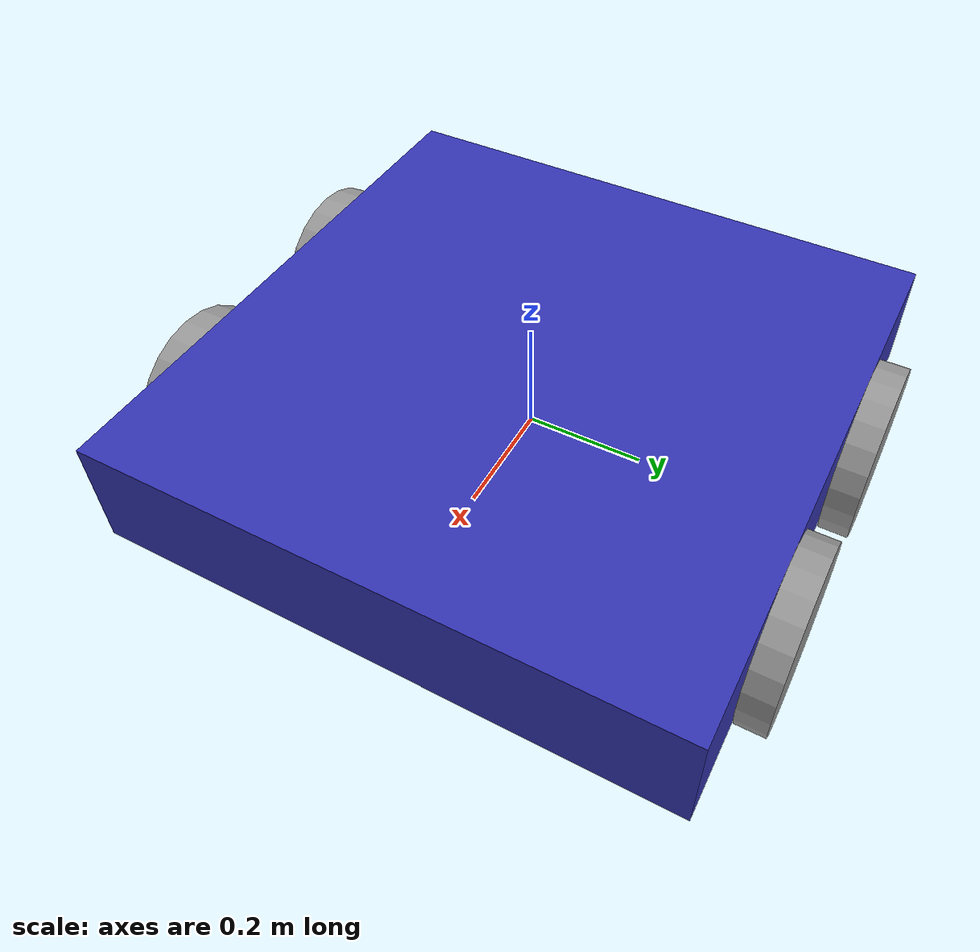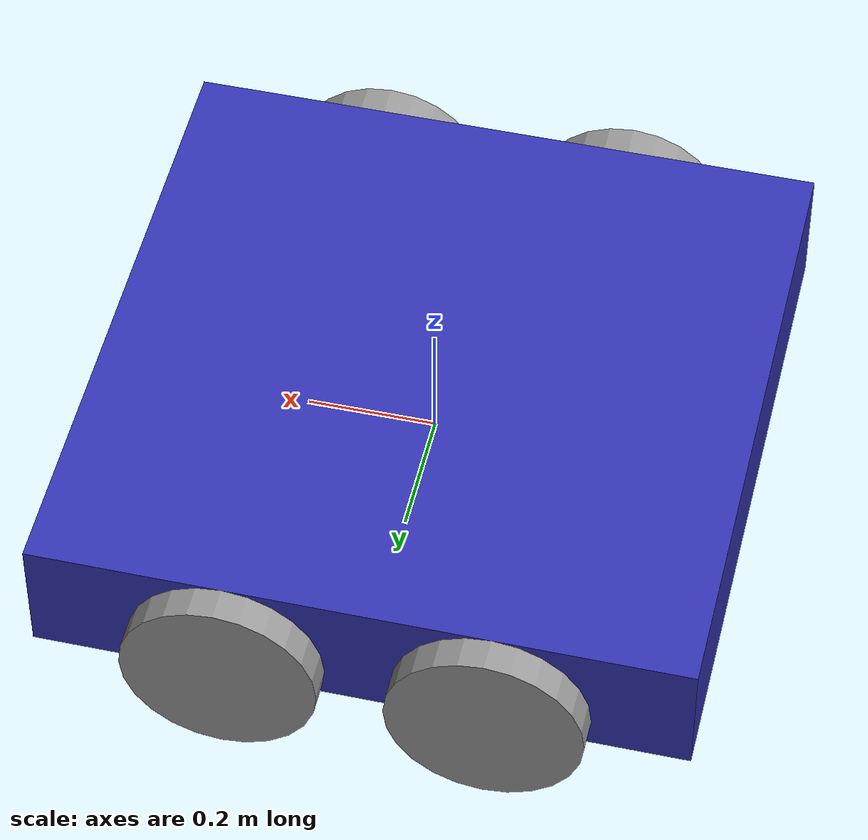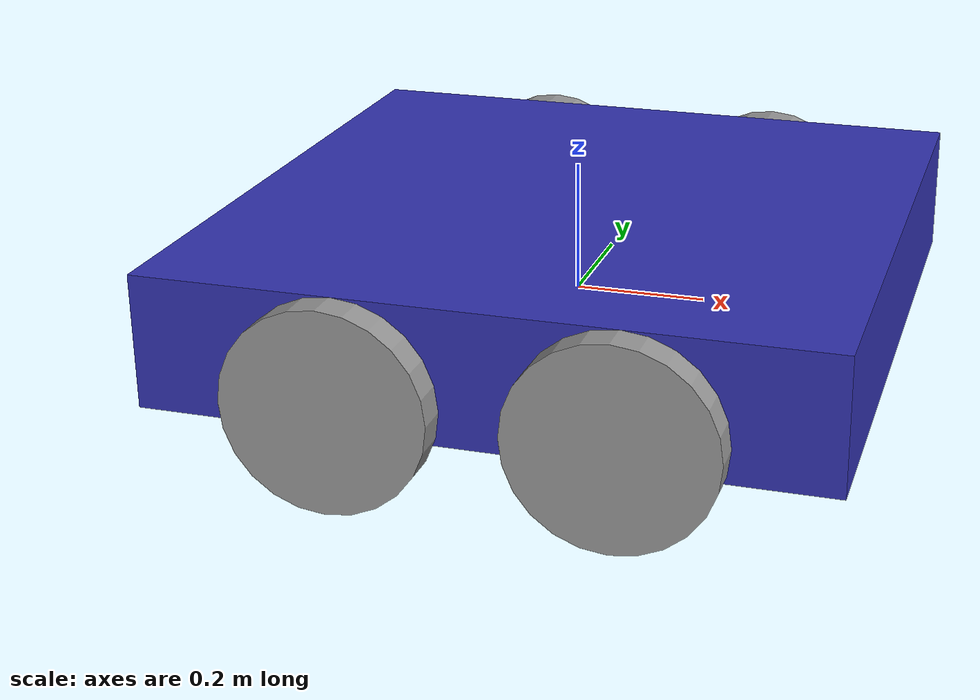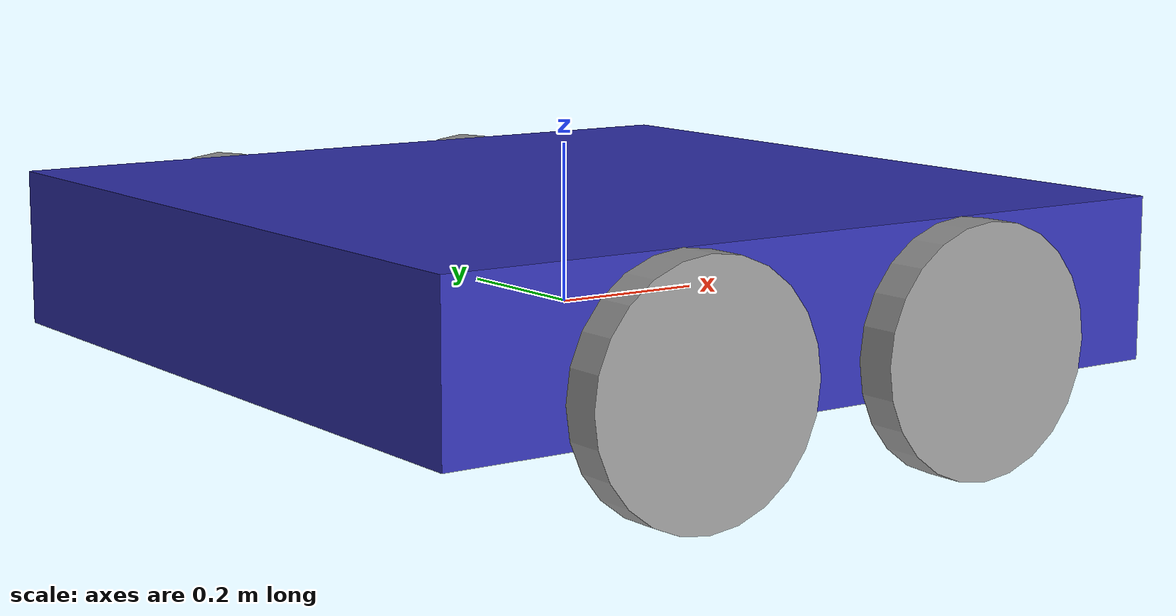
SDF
<?xml version='1.0'?>
<sdf version='1.6'>
  <model name='simple_4wd'>
    <link name='base'>
      <pose frame=''>0 -0 0.05 0 -0 0</pose>
      <inertial>
        <mass>20</mass>
        <pose frame=''>0 0 0 0 -0 0</pose>
        <inertia>
          <ixx>1</ixx>
          <ixy>0</ixy>
          <ixz>0</ixz>
          <iyy>1</iyy>
          <iyz>0</iyz>
          <izz>1</izz>
        </inertia>
      </inertial>
      <self_collide>0</self_collide>
      <kinematic>0</kinematic>
      <sensor name='robotCamera' type='camera'>
	<visualize>1</visualize>
	<camera name='__default__'>
          <horizontal_fov>1.5</horizontal_fov>
          <image>
            <width>1280</width>
            <height>720</height>
          </image>
          <clip>
            <near>0.1</near>
            <far>100</far>
          </clip>
	</camera>
	<pose frame=''>0.5 0 0.2 0 0 0</pose>
      </sensor>
      <visual name='visual'>
        <pose frame=''>0 0 0 0 -0 0</pose>
        <geometry>
          <box>
            <size>1 1 0.2</size>
          </box>
        </geometry>
        <material>
          <lighting>1</lighting>
          <script>
            <uri>file://media/materials/scripts/gazebo.material</uri>
            <name>Gazebo/Grey</name>
          </script>
          <shader type='pixel'>
            <normal_map>__default__</normal_map>
          </shader>
          <ambient>0 0 0.3 1</ambient>
          <diffuse>0.2 0.2 0.7 1</diffuse>
          <specular>0.01 0.01 0.01 1</specular>
          <emissive>0 0 0 1</emissive>
        </material>
        <transparency>0</transparency>
        <cast_shadows>1</cast_shadows>
      </visual>
      <collision name='collision'>
        <laser_retro>0</laser_retro>
        <max_contacts>10</max_contacts>
        <pose frame=''>0 0 0 0 -0 0</pose>
        <geometry>
          <box>
            <size>1 1 0.2</size>
          </box>
        </geometry>
        <surface>
          <friction>
            <ode>
              <mu>1</mu>
              <mu2>1</mu2>
              <fdir1>0 0 0</fdir1>
              <slip1>0</slip1>
              <slip2>0</slip2>
            </ode>
          </friction>
          <bounce>
            <restitution_coefficient>0</restitution_coefficient>
            <threshold>1e+06</threshold>
          </bounce>
          <contact>
            <collide_without_contact>0</collide_without_contact>
            <collide_without_contact_bitmask>1</collide_without_contact_bitmask>
            <collide_bitmask>1</collide_bitmask>
            <ode>
              <soft_cfm>0</soft_cfm>
              <soft_erp>0.2</soft_erp>
              <kp>1e+13</kp>
              <kd>1</kd>
              <max_vel>0.01</max_vel>
              <min_depth>0</min_depth>
            </ode>
            <bullet>
              <split_impulse>1</split_impulse>
              <split_impulse_penetration_threshold>-0.01</split_impulse_penetration_threshold>
              <soft_cfm>0</soft_cfm>
              <soft_erp>0.2</soft_erp>
              <kp>1e+13</kp>
              <kd>1</kd>
            </bullet>
          </contact>
        </surface>
      </collision>
    </link>
    <link name='back_left_wheel'>
      <pose frame=''>-0.2 0.525 0 1.5707 -0 0</pose>
      <inertial>
        <mass>0.5</mass>
        <pose frame=''>0 0 0 0 -0 0</pose>
        <inertia>
          <ixx>0.00294332</ixx>
          <ixy>0</ixy>
          <ixz>0</ixz>
          <iyy>0.00152724</iyy>
          <iyz>0</iyz>
          <izz>0.00152724</izz>
        </inertia>
      </inertial>
      <self_collide>0</self_collide>
      <kinematic>0</kinematic>
      <visual name='visual'>
        <pose frame=''>0 0 0 0 -0 0</pose>
        <geometry>
          <cylinder>
            <radius>0.15</radius>
            <length>0.05</length>
          </cylinder>
        </geometry>
        <material>
          <lighting>1</lighting>
          <script>
            <uri>file://media/materials/scripts/gazebo.material</uri>
            <name>Gazebo/Grey</name>
          </script>
          <shader type='pixel'>
            <normal_map>__default__</normal_map>
          </shader>
          <ambient>0 0 0 1</ambient>
          <diffuse>0.9 0.9 0.9 1</diffuse>
          <specular>0.01 0.01 0.01 1</specular>
          <emissive>0 0 0 1</emissive>
        </material>
        <transparency>0</transparency>
        <cast_shadows>1</cast_shadows>
      </visual>
      <collision name='collision'>
        <laser_retro>0</laser_retro>
        <max_contacts>10</max_contacts>
        <pose frame=''>0 0 0 0 -0 0</pose>
        <geometry>
          <cylinder>
            <radius>0.15</radius>
            <length>0.05</length>
          </cylinder>
        </geometry>
        <surface>
          <friction>
            <ode>
              <mu>1</mu>
              <mu2>1</mu2>
              <fdir1>0 0 0</fdir1>
              <slip1>0</slip1>
              <slip2>0</slip2>
            </ode>
          </friction>
          <bounce>
            <restitution_coefficient>0</restitution_coefficient>
            <threshold>1e+06</threshold>
          </bounce>
          <contact>
            <collide_without_contact>0</collide_without_contact>
            <collide_without_contact_bitmask>1</collide_without_contact_bitmask>
            <collide_bitmask>1</collide_bitmask>
            <ode>
              <soft_cfm>0</soft_cfm>
              <soft_erp>0.2</soft_erp>
              <kp>1e+13</kp>
              <kd>1</kd>
              <max_vel>0.01</max_vel>
              <min_depth>0</min_depth>
            </ode>
            <bullet>
              <split_impulse>1</split_impulse>
              <split_impulse_penetration_threshold>-0.01</split_impulse_penetration_threshold>
              <soft_cfm>0</soft_cfm>
              <soft_erp>0.2</soft_erp>
              <kp>1e+13</kp>
              <kd>1</kd>
            </bullet>
          </contact>
        </surface>
      </collision>
    </link>
    <link name='back_right_wheel'>
      <pose frame=''>-0.2 -0.525 0 1.5707 -0 0</pose>
      <inertial>
        <mass>0.5</mass>
        <pose frame=''>0 0 0 0 -0 0</pose>
        <inertia>
          <ixx>0.00294332</ixx>
          <ixy>0</ixy>
          <ixz>0</ixz>
          <iyy>0.00152724</iyy>
          <iyz>0</iyz>
          <izz>0.00152724</izz>
        </inertia>
      </inertial>
      <self_collide>0</self_collide>
      <kinematic>0</kinematic>
      <visual name='visual'>
        <pose frame=''>0 0 0 0 -0 0</pose>
        <geometry>
          <cylinder>
            <radius>0.15</radius>
            <length>0.05</length>
          </cylinder>
        </geometry>
        <material>
          <lighting>1</lighting>
          <script>
            <uri>file://media/materials/scripts/gazebo.material</uri>
            <name>Gazebo/Grey</name>
          </script>
          <shader type='pixel'>
            <normal_map>__default__</normal_map>
          </shader>
          <ambient>0 0 0 1</ambient>
          <diffuse>0.9 0.9 0.9 1</diffuse>
          <specular>0.01 0.01 0.01 1</specular>
          <emissive>0 0 0 1</emissive>
        </material>
        <transparency>0</transparency>
        <cast_shadows>1</cast_shadows>
      </visual>
      <collision name='collision'>
        <laser_retro>0</laser_retro>
        <max_contacts>10</max_contacts>
        <pose frame=''>0 0 0 0 -0 0</pose>
        <geometry>
          <cylinder>
            <radius>0.15</radius>
            <length>0.05</length>
          </cylinder>
        </geometry>
        <surface>
          <friction>
            <ode>
              <mu>1</mu>
              <mu2>1</mu2>
              <fdir1>0 0 0</fdir1>
              <slip1>0</slip1>
              <slip2>0</slip2>
            </ode>
          </friction>
          <bounce>
            <restitution_coefficient>0</restitution_coefficient>
            <threshold>1e+06</threshold>
          </bounce>
          <contact>
            <collide_without_contact>0</collide_without_contact>
            <collide_without_contact_bitmask>1</collide_without_contact_bitmask>
            <collide_bitmask>1</collide_bitmask>
            <ode>
              <soft_cfm>0</soft_cfm>
              <soft_erp>0.2</soft_erp>
              <kp>1e+13</kp>
              <kd>1</kd>
              <max_vel>0.01</max_vel>
              <min_depth>0</min_depth>
            </ode>
            <bullet>
              <split_impulse>1</split_impulse>
              <split_impulse_penetration_threshold>-0.01</split_impulse_penetration_threshold>
              <soft_cfm>0</soft_cfm>
              <soft_erp>0.2</soft_erp>
              <kp>1e+13</kp>
              <kd>1</kd>
            </bullet>
          </contact>
        </surface>
      </collision>
    </link>
    <link name='front_left_wheel'>
      <pose frame=''>0.2 0.525 -0 1.5707 -0 0</pose>
      <inertial>
        <mass>0.5</mass>
        <pose frame=''>0 0 0 0 -0 0</pose>
        <inertia>
          <ixx>0.00294332</ixx>
          <ixy>0</ixy>
          <ixz>0</ixz>
          <iyy>0.00152724</iyy>
          <iyz>0</iyz>
          <izz>0.00152724</izz>
        </inertia>
      </inertial>
      <self_collide>1</self_collide>
      <kinematic>0</kinematic>
      <visual name='visual'>
        <pose frame=''>0 0 0 0 -0 0</pose>
        <geometry>
          <cylinder>
            <radius>0.15</radius>
            <length>0.05</length>
          </cylinder>
        </geometry>
        <material>
          <lighting>1</lighting>
          <script>
            <uri>file://media/materials/scripts/gazebo.material</uri>
            <name>Gazebo/Grey</name>
          </script>
          <shader type='pixel'>
            <normal_map>__default__</normal_map>
          </shader>
          <ambient>0 0 0 1</ambient>
          <diffuse>0.9 0.9 0.9 1</diffuse>
          <specular>0.01 0.01 0.01 1</specular>
          <emissive>0 0 0 1</emissive>
        </material>
        <transparency>0</transparency>
        <cast_shadows>1</cast_shadows>
      </visual>
      <collision name='collision'>
        <laser_retro>0</laser_retro>
        <max_contacts>10</max_contacts>
        <pose frame=''>0 0 0 0 -0 0</pose>
        <geometry>
          <cylinder>
            <radius>0.15</radius>
            <length>0.05</length>
          </cylinder>
        </geometry>
        <surface>
          <friction>
            <ode>
              <mu>1</mu>
              <mu2>1</mu2>
              <fdir1>0 0 0</fdir1>
              <slip1>0</slip1>
              <slip2>0</slip2>
            </ode>
          </friction>
          <bounce>
            <restitution_coefficient>0</restitution_coefficient>
            <threshold>1e+06</threshold>
          </bounce>
          <contact>
            <collide_without_contact>0</collide_without_contact>
            <collide_without_contact_bitmask>1</collide_without_contact_bitmask>
            <collide_bitmask>1</collide_bitmask>
            <ode>
              <soft_cfm>0</soft_cfm>
              <soft_erp>0.2</soft_erp>
              <kp>1e+13</kp>
              <kd>1</kd>
              <max_vel>0.01</max_vel>
              <min_depth>0</min_depth>
            </ode>
            <bullet>
              <split_impulse>1</split_impulse>
              <split_impulse_penetration_threshold>-0.01</split_impulse_penetration_threshold>
              <soft_cfm>0</soft_cfm>
              <soft_erp>0.2</soft_erp>
              <kp>1e+13</kp>
              <kd>1</kd>
            </bullet>
          </contact>
        </surface>
      </collision>
    </link>
    <link name='front_right_wheel'>
      <pose frame=''>0.2 -0.525 -0 1.5707 -0 0</pose>
      <inertial>
        <mass>0.5</mass>
        <pose frame=''>0 0 0 0 -0 0</pose>
        <inertia>
          <ixx>0.00294332</ixx>
          <ixy>0</ixy>
          <ixz>0</ixz>
          <iyy>0.00152724</iyy>
          <iyz>0</iyz>
          <izz>0.00152724</izz>
        </inertia>
      </inertial>
      <self_collide>0</self_collide>
      <kinematic>0</kinematic>
      <visual name='visual'>
        <pose frame=''>0 0 0 0 -0 0</pose>
        <geometry>
          <cylinder>
            <radius>0.15</radius>
            <length>0.05</length>
          </cylinder>
        </geometry>
        <material>
          <lighting>1</lighting>
          <script>
            <uri>file://media/materials/scripts/gazebo.material</uri>
            <name>Gazebo/Grey</name>
          </script>
          <shader type='pixel'>
            <normal_map>__default__</normal_map>
          </shader>
          <ambient>0 0 0 1</ambient>
          <diffuse>0.9 0.9 0.9 1</diffuse>
          <specular>0.01 0.01 0.01 1</specular>
          <emissive>0 0 0 1</emissive>
        </material>
        <transparency>0</transparency>
        <cast_shadows>1</cast_shadows>
      </visual>
      <collision name='collision'>
        <laser_retro>0</laser_retro>
        <max_contacts>10</max_contacts>
        <pose frame=''>0 0 0 0 -0 0</pose>
        <geometry>
          <cylinder>
            <radius>0.15</radius>
            <length>0.05</length>
          </cylinder>
        </geometry>
        <surface>
          <friction>
            <ode>
              <mu>1</mu>
              <mu2>1</mu2>
              <fdir1>0 0 0</fdir1>
              <slip1>0</slip1>
              <slip2>0</slip2>
            </ode>
          </friction>
          <bounce>
            <restitution_coefficient>0</restitution_coefficient>
            <threshold>1e+06</threshold>
          </bounce>
          <contact>
            <collide_without_contact>0</collide_without_contact>
            <collide_without_contact_bitmask>1</collide_without_contact_bitmask>
            <collide_bitmask>1</collide_bitmask>
            <ode>
              <soft_cfm>0</soft_cfm>
              <soft_erp>0.2</soft_erp>
              <kp>1e+13</kp>
              <kd>1</kd>
              <max_vel>0.01</max_vel>
              <min_depth>0</min_depth>
            </ode>
            <bullet>
              <split_impulse>1</split_impulse>
              <split_impulse_penetration_threshold>-0.01</split_impulse_penetration_threshold>
              <soft_cfm>0</soft_cfm>
              <soft_erp>0.2</soft_erp>
              <kp>1e+13</kp>
              <kd>1</kd>
            </bullet>
          </contact>
        </surface>
      </collision>
    </link>
    <joint name='back_left_wheel_joint' type='revolute'>
      <parent>base</parent>
      <child>back_left_wheel</child>
      <pose frame=''>0 0 0 0 -0 0</pose>
      <axis>
        <xyz>0 0 1</xyz>
        <use_parent_model_frame>0</use_parent_model_frame>
        <limit>
          <lower>-1e+16</lower>
          <upper>1e+16</upper>
          <effort>-1</effort>
          <velocity>-1</velocity>
        </limit>
        <dynamics>
          <spring_reference>0</spring_reference>
          <spring_stiffness>0</spring_stiffness>
          <damping>2</damping>
          <friction>0.4</friction>
        </dynamics>
      </axis>
      <physics>
        <ode>
          <cfm>0</cfm>
          <bounce>0</bounce>
          <velocity>0</velocity>
          <fudge_factor>0</fudge_factor>
          <limit>
            <cfm>0</cfm>
            <erp>0.2</erp>
          </limit>
          <suspension>
            <cfm>0</cfm>
            <erp>0.2</erp>
          </suspension>
        </ode>
      </physics>
    </joint>
    <joint name='back_right_wheel_joint' type='revolute'>
      <parent>base</parent>
      <child>back_right_wheel</child>
      <pose frame=''>0 0 0 0 -0 0</pose>
      <axis>
        <xyz>0 0 1</xyz>
        <use_parent_model_frame>0</use_parent_model_frame>
        <limit>
          <lower>-1e+16</lower>
          <upper>1e+16</upper>
          <effort>-1</effort>
          <velocity>-1</velocity>
        </limit>
        <dynamics>
          <spring_reference>0</spring_reference>
          <spring_stiffness>0</spring_stiffness>
          <damping>2</damping>
          <friction>0.4</friction>
        </dynamics>
      </axis>
      <physics>
        <ode>
          <cfm>0</cfm>
          <bounce>0</bounce>
          <velocity>0</velocity>
          <fudge_factor>0</fudge_factor>
          <limit>
            <cfm>0</cfm>
            <erp>0.2</erp>
          </limit>
          <suspension>
            <cfm>0</cfm>
            <erp>0.2</erp>
          </suspension>
        </ode>
      </physics>
    </joint>
    <joint name='front_left_wheel_joint' type='revolute'>
      <parent>base</parent>
      <child>front_left_wheel</child>
      <pose frame=''>0 0 0 0 -0 0</pose>
      <axis>
        <xyz>0 0 1</xyz>
        <use_parent_model_frame>0</use_parent_model_frame>
        <limit>
          <lower>-1e+16</lower>
          <upper>1e+16</upper>
          <effort>-1</effort>
          <velocity>-1</velocity>
        </limit>
        <dynamics>
          <spring_reference>0</spring_reference>
          <spring_stiffness>0</spring_stiffness>
          <damping>2</damping>
          <friction>0.4</friction>
        </dynamics>
      </axis>
      <physics>
        <ode>
          <cfm>0</cfm>
          <bounce>0</bounce>
          <velocity>0</velocity>
          <fudge_factor>0</fudge_factor>
          <limit>
            <cfm>0</cfm>
            <erp>0.2</erp>
          </limit>
          <suspension>
            <cfm>0</cfm>
            <erp>0.2</erp>
          </suspension>
        </ode>
      </physics>
    </joint>
    <joint name='front_right_wheel_joint' type='revolute'>
      <parent>base</parent>
      <child>front_right_wheel</child>
      <pose frame=''>0 0 0 0 -0 0</pose>
      <axis>
        <xyz>0 0 1</xyz>
        <use_parent_model_frame>0</use_parent_model_frame>
        <limit>
          <lower>-1e+16</lower>
          <upper>1e+16</upper>
          <effort>-1</effort>
          <velocity>-1</velocity>
        </limit>
        <dynamics>
          <spring_reference>0</spring_reference>
          <spring_stiffness>0</spring_stiffness>
          <damping>2</damping>
          <friction>0.4</friction>
        </dynamics>
      </axis>
      <physics>
        <ode>
          <cfm>0</cfm>
          <bounce>0</bounce>
          <velocity>0</velocity>
          <fudge_factor>0</fudge_factor>
          <limit>
            <cfm>0</cfm>
            <erp>0.2</erp>
          </limit>
          <suspension>
            <cfm>0</cfm>
            <erp>0.2</erp>
          </suspension>
        </ode>
      </physics>
    </joint>
    <static>0</static>
    <allow_auto_disable>1</allow_auto_disable>
    <plugin name='clock' filename='libclock.so'>
      <topic>/gazebo/frc/time</topic>
    </plugin>
    <plugin name='front_right_motor' filename='libdc_motor.so'>
      <joint>front_right_wheel_joint</joint>
      <topic>/gazebo/frc/simulator/pwm/1</topic>
      <multiplier>20.0</multiplier>
    </plugin>
    <plugin name='back_right_motor' filename='libdc_motor.so'>
      <joint>back_right_wheel_joint</joint>
      <topic>/gazebo/frc/simulator/pwm/2</topic>
      <multiplier>20.0</multiplier>
    </plugin>
    <plugin name='front_left_motor' filename='libdc_motor.so'>
      <joint>front_left_wheel_joint</joint>
      <topic>/gazebo/frc/simulator/pwm/3</topic>
      <multiplier>-20.0</multiplier>
    </plugin>
    <plugin name='back_left_motor' filename='libdc_motor.so'>
      <joint>back_left_wheel_joint</joint>
      <topic>/gazebo/frc/simulator/pwm/4</topic>
      <multiplier>-20.0</multiplier>
    </plugin>
    <plugin name='back_left_encoder' filename='libencoder.so'>
      <joint>back_right_wheel_joint</joint>
      <topic>/gazebo/frc/simulator/dio/1/2</topic>
      <units>degrees</units>
    </plugin>
    <plugin name='back_right_encoder' filename='libencoder.so'>
      <joint>back_left_wheel_joint</joint>
      <topic>/gazebo/frc/simulator/dio/3/4</topic>
      <units>degrees</units>
    </plugin>
  </model>
</sdf>
